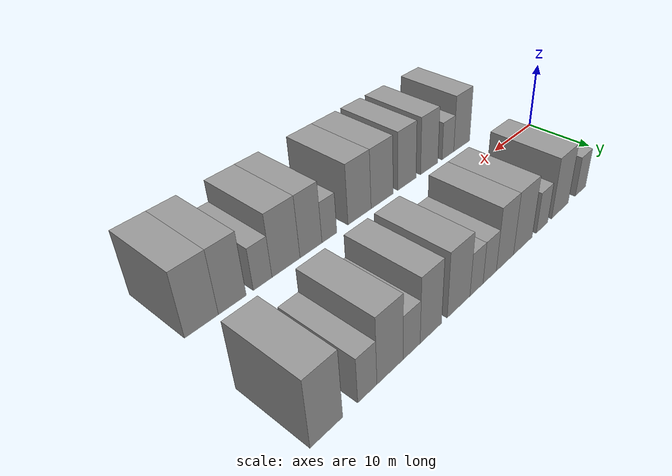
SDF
<sdf version="1.6">
 <world name="default">
  <model name="building_1">
   <static>1</static>
   <pose>11.4663 9.5000 0 0.000000 0.000000 1.570796</pose>
   <link name="link">
    <pose>0 0 3.00 0 0 0</pose>
    <collision name="collision"><geometry><box><size>10.0000 2.9326 6.0000</size></box></geometry></collision>
    <visual name="visual">
     <cast_shadows>0</cast_shadows>
     <geometry><box><size>10.0000 2.9326 6.0000</size></box></geometry>
     <material>
      <script>
       <uri>model://grey_wall/materials/scripts</uri>
       <uri>model://grey_wall/materials/textures</uri>
       <name>vrc/grey_wall</name>
      </script>
     </material>
    </visual>
   </link>
  </model>
  <model name="building_2">
   <static>1</static>
   <pose>17.1195 9.5000 0 0.000000 0.000000 1.570796</pose>
   <link name="link">
    <pose>0 0 4.50 0 0 0</pose>
    <collision name="collision"><geometry><box><size>10.0000 4.3737 9.0000</size></box></geometry></collision>
    <visual name="visual">
     <cast_shadows>0</cast_shadows>
     <geometry><box><size>10.0000 4.3737 9.0000</size></box></geometry>
     <material>
      <script>
       <uri>model://grey_wall/materials/scripts</uri>
       <uri>model://grey_wall/materials/textures</uri>
       <name>vrc/grey_wall</name>
      </script>
     </material>
    </visual>
   </link>
  </model>
  <model name="building_3">
   <static>1</static>
   <pose>21.7086 9.5000 0 0.000000 0.000000 1.570796</pose>
   <link name="link">
    <pose>0 0 3.00 0 0 0</pose>
    <collision name="collision"><geometry><box><size>10.0000 2.8046 6.0000</size></box></geometry></collision>
    <visual name="visual">
     <cast_shadows>0</cast_shadows>
     <geometry><box><size>10.0000 2.8046 6.0000</size></box></geometry>
     <material>
      <script>
       <uri>model://grey_wall/materials/scripts</uri>
       <uri>model://grey_wall/materials/textures</uri>
       <name>vrc/grey_wall</name>
      </script>
     </material>
    </visual>
   </link>
  </model>
  <model name="building_4">
   <static>1</static>
   <pose>26.2625 9.5000 0 0.000000 0.000000 1.570796</pose>
   <link name="link">
    <pose>0 0 4.50 0 0 0</pose>
    <collision name="collision"><geometry><box><size>10.0000 4.3031 9.0000</size></box></geometry></collision>
    <visual name="visual">
     <cast_shadows>0</cast_shadows>
     <geometry><box><size>10.0000 4.3031 9.0000</size></box></geometry>
     <material>
      <script>
       <uri>model://grey_wall/materials/scripts</uri>
       <uri>model://grey_wall/materials/textures</uri>
       <name>vrc/grey_wall</name>
      </script>
     </material>
    </visual>
   </link>
  </model>
  <model name="building_5">
   <static>1</static>
   <pose>30.2698 9.5000 0 0.000000 0.000000 1.570796</pose>
   <link name="link">
    <pose>0 0 4.50 0 0 0</pose>
    <collision name="collision"><geometry><box><size>10.0000 3.7114 9.0000</size></box></geometry></collision>
    <visual name="visual">
     <cast_shadows>0</cast_shadows>
     <geometry><box><size>10.0000 3.7114 9.0000</size></box></geometry>
     <material>
      <script>
       <uri>model://grey_wall/materials/scripts</uri>
       <uri>model://grey_wall/materials/textures</uri>
       <name>vrc/grey_wall</name>
      </script>
     </material>
    </visual>
   </link>
  </model>
  <model name="building_6">
   <static>1</static>
   <pose>33.4871 9.5000 0 0.000000 0.000000 1.570796</pose>
   <link name="link">
    <pose>0 0 3.00 0 0 0</pose>
    <collision name="collision"><geometry><box><size>10.0000 2.7232 6.0000</size></box></geometry></collision>
    <visual name="visual">
     <cast_shadows>0</cast_shadows>
     <geometry><box><size>10.0000 2.7232 6.0000</size></box></geometry>
     <material>
      <script>
       <uri>model://grey_wall/materials/scripts</uri>
       <uri>model://grey_wall/materials/textures</uri>
       <name>vrc/grey_wall</name>
      </script>
     </material>
    </visual>
   </link>
  </model>
  <model name="building_7">
   <static>1</static>
   <pose>36.1330 9.5000 0 0.000000 0.000000 1.570796</pose>
   <link name="link">
    <pose>0 0 3.00 0 0 0</pose>
    <collision name="collision"><geometry><box><size>10.0000 2.5685 6.0000</size></box></geometry></collision>
    <visual name="visual">
     <cast_shadows>0</cast_shadows>
     <geometry><box><size>10.0000 2.5685 6.0000</size></box></geometry>
     <material>
      <script>
       <uri>model://grey_wall/materials/scripts</uri>
       <uri>model://grey_wall/materials/textures</uri>
       <name>vrc/grey_wall</name>
      </script>
     </material>
    </visual>
   </link>
  </model>
  <model name="building_8">
   <static>1</static>
   <pose>39.5141 9.5000 0 0.000000 0.000000 1.570796</pose>
   <link name="link">
    <pose>0 0 4.50 0 0 0</pose>
    <collision name="collision"><geometry><box><size>10.0000 4.1938 9.0000</size></box></geometry></collision>
    <visual name="visual">
     <cast_shadows>0</cast_shadows>
     <geometry><box><size>10.0000 4.1938 9.0000</size></box></geometry>
     <material>
      <script>
       <uri>model://grey_wall/materials/scripts</uri>
       <uri>model://grey_wall/materials/textures</uri>
       <name>vrc/grey_wall</name>
      </script>
     </material>
    </visual>
   </link>
  </model>
  <model name="building_9">
   <static>1</static>
   <pose>44.4281 9.5000 0 0.000000 0.000000 1.570796</pose>
   <link name="link">
    <pose>0 0 4.50 0 0 0</pose>
    <collision name="collision"><geometry><box><size>10.0000 3.6342 9.0000</size></box></geometry></collision>
    <visual name="visual">
     <cast_shadows>0</cast_shadows>
     <geometry><box><size>10.0000 3.6342 9.0000</size></box></geometry>
     <material>
      <script>
       <uri>model://grey_wall/materials/scripts</uri>
       <uri>model://grey_wall/materials/textures</uri>
       <name>vrc/grey_wall</name>
      </script>
     </material>
    </visual>
   </link>
  </model>
  <model name="building_10">
   <static>1</static>
   <pose>47.5984 9.5000 0 0.000000 0.000000 1.570796</pose>
   <link name="link">
    <pose>0 0 3.00 0 0 0</pose>
    <collision name="collision"><geometry><box><size>10.0000 2.7064 6.0000</size></box></geometry></collision>
    <visual name="visual">
     <cast_shadows>0</cast_shadows>
     <geometry><box><size>10.0000 2.7064 6.0000</size></box></geometry>
     <material>
      <script>
       <uri>model://grey_wall/materials/scripts</uri>
       <uri>model://grey_wall/materials/textures</uri>
       <name>vrc/grey_wall</name>
      </script>
     </material>
    </visual>
   </link>
  </model>
  <model name="building_11">
   <static>1</static>
   <pose>50.9195 9.5000 0 0.000000 0.000000 1.570796</pose>
   <link name="link">
    <pose>0 0 4.50 0 0 0</pose>
    <collision name="collision"><geometry><box><size>10.0000 3.9358 9.0000</size></box></geometry></collision>
    <visual name="visual">
     <cast_shadows>0</cast_shadows>
     <geometry><box><size>10.0000 3.9358 9.0000</size></box></geometry>
     <material>
      <script>
       <uri>model://grey_wall/materials/scripts</uri>
       <uri>model://grey_wall/materials/textures</uri>
       <name>vrc/grey_wall</name>
      </script>
     </material>
    </visual>
   </link>
  </model>
  <model name="building_12">
   <static>1</static>
   <pose>54.2361 9.5000 0 0.000000 0.000000 1.570796</pose>
   <link name="link">
    <pose>0 0 3.00 0 0 0</pose>
    <collision name="collision"><geometry><box><size>10.0000 2.6974 6.0000</size></box></geometry></collision>
    <visual name="visual">
     <cast_shadows>0</cast_shadows>
     <geometry><box><size>10.0000 2.6974 6.0000</size></box></geometry>
     <material>
      <script>
       <uri>model://grey_wall/materials/scripts</uri>
       <uri>model://grey_wall/materials/textures</uri>
       <name>vrc/grey_wall</name>
      </script>
     </material>
    </visual>
   </link>
  </model>
  <model name="building_13">
   <static>1</static>
   <pose>59.6473 9.5000 0 0.000000 0.000000 1.570796</pose>
   <link name="link">
    <pose>0 0 4.50 0 0 0</pose>
    <collision name="collision"><geometry><box><size>10.0000 4.1249 9.0000</size></box></geometry></collision>
    <visual name="visual">
     <cast_shadows>0</cast_shadows>
     <geometry><box><size>10.0000 4.1249 9.0000</size></box></geometry>
     <material>
      <script>
       <uri>model://grey_wall/materials/scripts</uri>
       <uri>model://grey_wall/materials/textures</uri>
       <name>vrc/grey_wall</name>
      </script>
     </material>
    </visual>
   </link>
  </model>
  <model name="building_52">
   <static>1</static>
   <pose>12.0296 -9.5000 0 0.000000 0.000000 1.570796</pose>
   <link name="link">
    <pose>0 0 4.50 0 0 0</pose>
    <collision name="collision"><geometry><box><size>10.0000 4.0592 9.0000</size></box></geometry></collision>
    <visual name="visual">
     <cast_shadows>0</cast_shadows>
     <geometry><box><size>10.0000 4.0592 9.0000</size></box></geometry>
     <material>
      <script>
       <uri>model://grey_wall/materials/scripts</uri>
       <uri>model://grey_wall/materials/textures</uri>
       <name>vrc/grey_wall</name>
      </script>
     </material>
    </visual>
   </link>
  </model>
  <model name="building_53">
   <static>1</static>
   <pose>15.4925 -9.5000 0 0.000000 0.000000 1.570796</pose>
   <link name="link">
    <pose>0 0 3.00 0 0 0</pose>
    <collision name="collision"><geometry><box><size>10.0000 2.8667 6.0000</size></box></geometry></collision>
    <visual name="visual">
     <cast_shadows>0</cast_shadows>
     <geometry><box><size>10.0000 2.8667 6.0000</size></box></geometry>
     <material>
      <script>
       <uri>model://grey_wall/materials/scripts</uri>
       <uri>model://grey_wall/materials/textures</uri>
       <name>vrc/grey_wall</name>
      </script>
     </material>
    </visual>
   </link>
  </model>
  <model name="building_54">
   <static>1</static>
   <pose>19.9274 -9.5000 0 0.000000 0.000000 1.570796</pose>
   <link name="link">
    <pose>0 0 4.50 0 0 0</pose>
    <collision name="collision"><geometry><box><size>10.0000 4.0031 9.0000</size></box></geometry></collision>
    <visual name="visual">
     <cast_shadows>0</cast_shadows>
     <geometry><box><size>10.0000 4.0031 9.0000</size></box></geometry>
     <material>
      <script>
       <uri>model://grey_wall/materials/scripts</uri>
       <uri>model://grey_wall/materials/textures</uri>
       <name>vrc/grey_wall</name>
      </script>
     </material>
    </visual>
   </link>
  </model>
  <model name="building_55">
   <static>1</static>
   <pose>24.8830 -9.5000 0 0.000000 0.000000 1.570796</pose>
   <link name="link">
    <pose>0 0 4.50 0 0 0</pose>
    <collision name="collision"><geometry><box><size>10.0000 3.9080 9.0000</size></box></geometry></collision>
    <visual name="visual">
     <cast_shadows>0</cast_shadows>
     <geometry><box><size>10.0000 3.9080 9.0000</size></box></geometry>
     <material>
      <script>
       <uri>model://grey_wall/materials/scripts</uri>
       <uri>model://grey_wall/materials/textures</uri>
       <name>vrc/grey_wall</name>
      </script>
     </material>
    </visual>
   </link>
  </model>
  <model name="building_56">
   <static>1</static>
   <pose>30.0492 -9.5000 0 0.000000 0.000000 1.570796</pose>
   <link name="link">
    <pose>0 0 4.50 0 0 0</pose>
    <collision name="collision"><geometry><box><size>10.0000 4.4245 9.0000</size></box></geometry></collision>
    <visual name="visual">
     <cast_shadows>0</cast_shadows>
     <geometry><box><size>10.0000 4.4245 9.0000</size></box></geometry>
     <material>
      <script>
       <uri>model://grey_wall/materials/scripts</uri>
       <uri>model://grey_wall/materials/textures</uri>
       <name>vrc/grey_wall</name>
      </script>
     </material>
    </visual>
   </link>
  </model>
  <model name="building_57">
   <static>1</static>
   <pose>34.4392 -9.5000 0 0.000000 0.000000 1.570796</pose>
   <link name="link">
    <pose>0 0 4.50 0 0 0</pose>
    <collision name="collision"><geometry><box><size>10.0000 4.3555 9.0000</size></box></geometry></collision>
    <visual name="visual">
     <cast_shadows>0</cast_shadows>
     <geometry><box><size>10.0000 4.3555 9.0000</size></box></geometry>
     <material>
      <script>
       <uri>model://grey_wall/materials/scripts</uri>
       <uri>model://grey_wall/materials/textures</uri>
       <name>vrc/grey_wall</name>
      </script>
     </material>
    </visual>
   </link>
  </model>
  <model name="building_58">
   <static>1</static>
   <pose>39.9053 -9.5000 0 0.000000 0.000000 1.570796</pose>
   <link name="link">
    <pose>0 0 3.00 0 0 0</pose>
    <collision name="collision"><geometry><box><size>10.0000 2.5767 6.0000</size></box></geometry></collision>
    <visual name="visual">
     <cast_shadows>0</cast_shadows>
     <geometry><box><size>10.0000 2.5767 6.0000</size></box></geometry>
     <material>
      <script>
       <uri>model://grey_wall/materials/scripts</uri>
       <uri>model://grey_wall/materials/textures</uri>
       <name>vrc/grey_wall</name>
      </script>
     </material>
    </visual>
   </link>
  </model>
  <model name="building_59">
   <static>1</static>
   <pose>43.0047 -9.5000 0 0.000000 0.000000 1.570796</pose>
   <link name="link">
    <pose>0 0 4.50 0 0 0</pose>
    <collision name="collision"><geometry><box><size>10.0000 3.6222 9.0000</size></box></geometry></collision>
    <visual name="visual">
     <cast_shadows>0</cast_shadows>
     <geometry><box><size>10.0000 3.6222 9.0000</size></box></geometry>
     <material>
      <script>
       <uri>model://grey_wall/materials/scripts</uri>
       <uri>model://grey_wall/materials/textures</uri>
       <name>vrc/grey_wall</name>
      </script>
     </material>
    </visual>
   </link>
  </model>
  <model name="building_60">
   <static>1</static>
   <pose>46.9887 -9.5000 0 0.000000 0.000000 1.570796</pose>
   <link name="link">
    <pose>0 0 4.50 0 0 0</pose>
    <collision name="collision"><geometry><box><size>10.0000 4.3457 9.0000</size></box></geometry></collision>
    <visual name="visual">
     <cast_shadows>0</cast_shadows>
     <geometry><box><size>10.0000 4.3457 9.0000</size></box></geometry>
     <material>
      <script>
       <uri>model://grey_wall/materials/scripts</uri>
       <uri>model://grey_wall/materials/textures</uri>
       <name>vrc/grey_wall</name>
      </script>
     </material>
    </visual>
   </link>
  </model>
  <model name="building_61">
   <static>1</static>
   <pose>50.5330 -9.5000 0 0.000000 0.000000 1.570796</pose>
   <link name="link">
    <pose>0 0 3.00 0 0 0</pose>
    <collision name="collision"><geometry><box><size>10.0000 2.7430 6.0000</size></box></geometry></collision>
    <visual name="visual">
     <cast_shadows>0</cast_shadows>
     <geometry><box><size>10.0000 2.7430 6.0000</size></box></geometry>
     <material>
      <script>
       <uri>model://grey_wall/materials/scripts</uri>
       <uri>model://grey_wall/materials/textures</uri>
       <name>vrc/grey_wall</name>
      </script>
     </material>
    </visual>
   </link>
  </model>
  <model name="building_62">
   <static>1</static>
   <pose>54.7955 -9.5000 0 0.000000 0.000000 1.570796</pose>
   <link name="link">
    <pose>0 0 4.50 0 0 0</pose>
    <collision name="collision"><geometry><box><size>10.0000 3.7818 9.0000</size></box></geometry></collision>
    <visual name="visual">
     <cast_shadows>0</cast_shadows>
     <geometry><box><size>10.0000 3.7818 9.0000</size></box></geometry>
     <material>
      <script>
       <uri>model://grey_wall/materials/scripts</uri>
       <uri>model://grey_wall/materials/textures</uri>
       <name>vrc/grey_wall</name>
      </script>
     </material>
    </visual>
   </link>
  </model>
  <model name="building_63">
   <static>1</static>
   <pose>58.8377 -9.5000 0 0.000000 0.000000 1.570796</pose>
   <link name="link">
    <pose>0 0 4.50 0 0 0</pose>
    <collision name="collision"><geometry><box><size>10.0000 4.3026 9.0000</size></box></geometry></collision>
    <visual name="visual">
     <cast_shadows>0</cast_shadows>
     <geometry><box><size>10.0000 4.3026 9.0000</size></box></geometry>
     <material>
      <script>
       <uri>model://grey_wall/materials/scripts</uri>
       <uri>model://grey_wall/materials/textures</uri>
       <name>vrc/grey_wall</name>
      </script>
     </material>
    </visual>
   </link>
  </model>
 </world>
</sdf>
